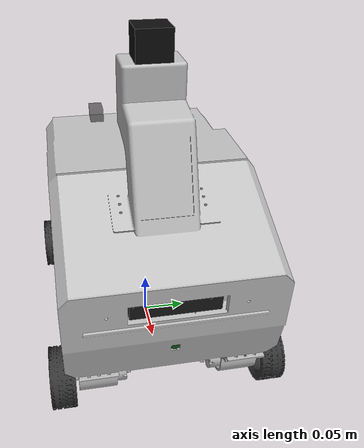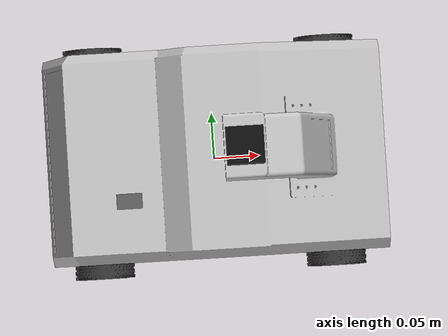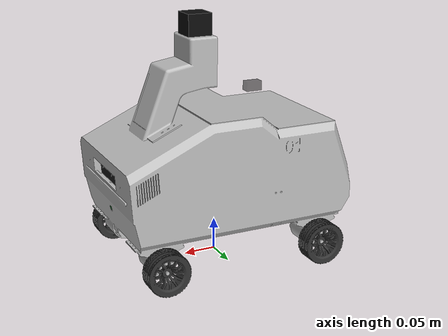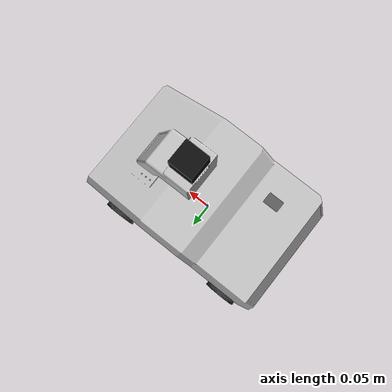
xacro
<?xml version="1.0"?>
<robot xmlns:xacro="http://www.ros.org/wiki/xacro" name="ubot">

    <xacro:property name="M_PI" value="3.1415926535897931" />

    <xacro:arg name="robot_name" default="ubot_robot"/>
    <xacro:arg name="prefix" default=""/>
    <xacro:arg name="use_gazebo" default="false"/>
    <xacro:arg name="sensor_profile" default="full"/>
    <xacro:arg name="camera_pitch" default="0"/>

    <xacro:include filename="$(find ubot_description)/urdf/body/ubot_base.urdf.xacro"/>
    <xacro:include filename="$(find ubot_description)/urdf/sensors/ubot_lidar.urdf.xacro"/>
    <!-- Ultrasonics are not part of the Inspection Robot 01 body; re-enable here and below if fitted. -->
    <xacro:include filename="$(find ubot_description)/urdf/sensors/ubot_camera.urdf.xacro"/>
    <xacro:include filename="$(find ubot_description)/urdf/sensors/ubot_rpi_camera.urdf.xacro"/>
    <xacro:include filename="$(find ubot_description)/urdf/sensors/ubot_imu.urdf.xacro"/>

    <xacro:include filename="$(find ubot_description)/urdf/body/ubot_wheel.urdf.xacro"/>
    <xacro:include filename="$(find ubot_description)/urdf/ros2_control/ubot_ros2_control.xacro"/>
    <xacro:include filename="$(find ubot_description)/urdf/gazebo/ubot_gazebo.urdf.xacro"/>

    <xacro:ubot_ros2_control prefix="$(arg prefix)" use_gazebo="$(arg use_gazebo)" />

    <xacro:if value="$(arg use_gazebo)">
        <xacro:ubot_gazebo prefix="$(arg prefix)" />
    </xacro:if>

    <xacro:ubot_base
    prefix="$(arg prefix)" />

    <xacro:ubot_wheel
    prefix="$(arg prefix)" />

    <xacro:ubot_lidar
    prefix="$(arg prefix)" />

    <xacro:ubot_camera
    prefix="$(arg prefix)"
    pitch="$(arg camera_pitch)" />

    <xacro:ubot_rpi_camera
    prefix="$(arg prefix)" />

    <xacro:ubot_imu
    prefix="$(arg prefix)" />

</robot>

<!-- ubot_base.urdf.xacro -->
<robot xmlns:xacro="http://www.ros.org/wiki/xacro">
<xacro:property name="base_mesh_x" value="-0.16238" />       <!-- Fusion origin -> base_link -->
<xacro:property name="ground_clearance" value="0.066375" />  <!-- base_link height above ground (wheel r 32.5 mm + axle 33.875 mm below chassis) -->

<!-- Mass properties from CAD (PLA printed parts at 100% infill, aluminium motors, LCD).
     Real robot will be heavier (battery, Pi, wiring) and lighter where printed at partial infill. -->
<xacro:property name="base_mass" value="1.757604" />
<xacro:property name="base_com_x" value="0.010371" />
<xacro:property name="base_com_y" value="-0.000052" />
<xacro:property name="base_com_z" value="0.051079" />

<!-- Simplified collision boxes (the full mesh has ~52k triangles, too heavy for physics) -->
<xacro:property name="body_length" value="0.357" />
<xacro:property name="body_width" value="0.220" />
<xacro:property name="body_height" value="0.173" />
<xacro:property name="body_x" value="0.00088" />
<xacro:property name="mast_length" value="0.102" />
<xacro:property name="mast_width" value="0.066" />
<xacro:property name="mast_height" value="0.107" />
<xacro:property name="mast_x" value="0.0610" />
<xacro:property name="mast_z" value="0.2265" />

<!-- Motors and holders hang below the chassis (z -0.048 .. 0), i.e. 18 mm above the ground. -->
<xacro:property name="under_length" value="0.336" />
<xacro:property name="under_width" value="0.232" />
<xacro:property name="under_height" value="0.048" />
<xacro:property name="under_z" value="-0.024" />

<xacro:macro name="ubot_base" params="prefix">
    <link name="${prefix}base_footprint"/>
    <link name="${prefix}base_link">
        <visual>
            <origin xyz="${base_mesh_x} 0 0" rpy="0 0 0"/>
            <geometry>
                <mesh filename="file://$(find ubot_description)/meshes/inspection/base.stl" scale="0.001 0.001 0.001"/>
            </geometry>
            <material name="chassis_gray">
                <color rgba="0.75 0.75 0.75 1"/>
            </material>
        </visual>

        <collision>
            <origin xyz="${body_x} 0 ${body_height/2}" rpy="0 0 0"/>
            <geometry>
                <box size="${body_length} ${body_width} ${body_height}"/>
            </geometry>
        </collision>
        <collision>
            <origin xyz="${mast_x} 0 ${mast_z}" rpy="0 0 0"/>
            <geometry>
                <box size="${mast_length} ${mast_width} ${mast_height}"/>
            </geometry>
        </collision>
        <collision>
            <origin xyz="0 0 ${under_z}" rpy="0 0 0"/>
            <geometry>
                <box size="${under_length} ${under_width} ${under_height}"/>
            </geometry>
        </collision>

        <inertial>
            <origin xyz="${base_com_x} ${base_com_y} ${base_com_z}" rpy="0 0 0"/>
            <mass value="${base_mass}"/>
            <inertia ixx="0.019834" ixy="-0.000003" ixz="-0.001273"
                     iyy="0.034307" iyz="0.000005"
                     izz="0.033227"/>
        </inertial>
    </link>
    <gazebo reference="${prefix}base_link">
        <visual>
            <material>
                <ambient>0.6 0.6 0.6 1</ambient>
                <diffuse>0.75 0.75 0.75 1</diffuse>
                <specular>0.2 0.2 0.2 1</specular>
            </material>
        </visual>
    </gazebo>
    <joint name="${prefix}base_joint" type="fixed">
        <parent link="${prefix}base_footprint"/>
        <child link="${prefix}base_link"/>
        <origin xyz="0 0 ${ground_clearance}" rpy="0 0 0"/>
  </joint>
</xacro:macro>
</robot>

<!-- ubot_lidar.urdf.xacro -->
<robot xmlns:xacro="http://www.ros.org/wiki/xacro">
  <xacro:property name="lidar_length" value="0.0377" />
  <xacro:property name="lidar_width"  value="0.0375" />
  <xacro:property name="lidar_height" value="0.0330" />
  <xacro:property name="lidar_mass"   value="0.0428" />   <!-- approximate, not from datasheet -->

  <!-- Mount: top face of the mast, from CAD (base_link frame) -->
  <xacro:property name="lidar_mount_z" value="0.2798" />
  <xacro:property name="lidar_x" value="0.030584" />
  <xacro:property name="lidar_y" value="0.0" />
  <xacro:property name="lidar_scan_z" value="${lidar_mount_z + lidar_height/2}" />

  <xacro:macro name="ubot_lidar" params="prefix">

    <link name="${prefix}lidar_link">
      <visual>
        <origin xyz="0 0 0" rpy="0 0 0"/>
        <geometry>
          <box size="${lidar_length} ${lidar_width} ${lidar_height}"/>
        </geometry>
        <material name="black">
          <color rgba="0.05 0.05 0.05 1"/>
        </material>
      </visual>

      <collision>
        <origin xyz="0 0 0" rpy="0 0 0"/>
        <geometry>
          <box size="${lidar_length} ${lidar_width} ${lidar_height}"/>
        </geometry>
      </collision>

      <inertial>
        <origin xyz="0 0 0" rpy="0 0 0"/>
        <mass value="${lidar_mass}"/>
        <inertia ixx="${(1/12) * lidar_mass * (lidar_width*lidar_width + lidar_height*lidar_height)}"
                 ixy="0.0" ixz="0.0"
                 iyy="${(1/12) * lidar_mass * (lidar_length*lidar_length + lidar_height*lidar_height)}"
                 iyz="0.0"
                 izz="${(1/12) * lidar_mass * (lidar_length*lidar_length + lidar_width*lidar_width)}"/>
      </inertial>
    </link>

    <joint name="${prefix}lidar_joint" type="fixed">
      <parent link="${prefix}base_link"/>
      <child link="${prefix}lidar_link"/>
      <origin xyz="${lidar_x} ${lidar_y} ${lidar_scan_z}" rpy="0 0 0"/>
    </joint>
  </xacro:macro>
</robot>

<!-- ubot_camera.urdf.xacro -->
<robot xmlns:xacro="http://www.ros.org/wiki/xacro">
  <xacro:property name="camera_mass" value="0.061" />    <!-- OAK-D Lite datasheet -->
  <xacro:property name="camera_width" value="0.091" />
  <xacro:property name="camera_length" value="0.0175" />  <!-- depth, along X -->
  <xacro:property name="camera_height" value="0.028" />

  <xacro:property name="camera_x" value="0.167769" />
  <xacro:property name="camera_y" value="0.0" />
  <xacro:property name="camera_z" value="0.085654" />
  <xacro:property name="camera_cad_tilt" value="0.0714" />   <!-- rad, positive = looking down -->

  <!-- Mesh position in the exported (Fusion world) frame; the visual origin below is the
       inverse of the joint transform, computed symbolically because the tilt is variable. -->
  <xacro:property name="camera_mesh_x" value="0.330149" />
  <xacro:property name="camera_mesh_z" value="0.085654" />

  <xacro:macro name="ubot_camera" params="prefix pitch:=0">

    <!-- net tilt, positive = down -->
    <xacro:property name="tilt" value="${camera_cad_tilt - pitch}" />

    <!--CAMERA_LINK (OAK-D Lite body)-->
    <link name="${prefix}camera_link">
      <visual>
        <!-- inverse of the joint transform, so the world-frame mesh lands in place -->
        <origin xyz="${-camera_mesh_x*cos(tilt) + camera_mesh_z*sin(tilt)} 0 ${-camera_mesh_x*sin(tilt) - camera_mesh_z*cos(tilt)}"
                rpy="0 ${-tilt} 0"/>
        <geometry>
          <mesh filename="file://$(find ubot_description)/meshes/inspection/oakd_lite.stl" scale="0.001 0.001 0.001"/>
        </geometry>
        <material name="camera_black">
          <color rgba="0.1 0.1 0.1 1"/>
        </material>
      </visual>

      <!-- No collision shape: the OAK-D sits inside the chassis collision box, so one here
           would be unreachable. Add one if the camera is ever mounted proud of the body. -->

      <inertial>
        <origin xyz="${-camera_length/2} 0 0" rpy="0 0 0"/>
        <mass value="${camera_mass}"/>
        <inertia ixx="0.000046" ixy="0.0" ixz="0.0"
                 iyy="0.000006" iyz="0.0"
                 izz="0.000044"/>
      </inertial>
    </link>

    <joint name="${prefix}camera_joint" type="fixed">
      <parent link="${prefix}base_link"/>
      <child link="${prefix}camera_link"/>
      <origin xyz="${camera_x} ${camera_y} ${camera_z}" rpy="0 ${tilt} 0"/>
    </joint>

    <!-- CAMERA_DEPTH_FRAME: kept for compatibility. NOT an optical frame
         despite its old comment: it is aligned with camera_link. -->
    <link name="${prefix}camera_depth_frame"/>

    <joint name="${prefix}camera_depth_joint" type="fixed">
      <parent link="${prefix}camera_link"/>
      <child link="${prefix}camera_depth_frame"/>
      <origin xyz="0 0 0" rpy="0 0 0"/>
    </joint>

    <!-- CAMERA_RGB_FRAME: the optical frame. X right, Y down, Z forward. -->
    <link name="${prefix}camera_rgb_frame"/>

    <joint name="${prefix}camera_rgb_joint" type="fixed">
      <parent link="${prefix}camera_link"/>
      <child link="${prefix}camera_rgb_frame"/>
      <origin xyz="0 0 0" rpy="${-pi/2} 0 ${-pi/2}"/>
    </joint>

    <link name="${prefix}camera_optical_frame"/>

    <joint name="${prefix}camera_optical_joint" type="fixed">
      <parent link="${prefix}camera_link"/>
      <child link="${prefix}camera_optical_frame"/>
      <origin xyz="0 0 0" rpy="${-pi/2} 0 ${-pi/2}"/>
    </joint>

  </xacro:macro>
</robot>

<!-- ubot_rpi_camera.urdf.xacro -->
<robot xmlns:xacro="http://www.ros.org/wiki/xacro">
  <!--
    Raspberry Pi Camera v1 in the lower front bumper.

    rpi_camera_link is at the centre of the camera board, X pointing out of the lens,
    tilted 12.54 deg downward as mounted in CAD.
  -->
  <xacro:property name="rpi_camera_mass" value="0.0017" />

  <xacro:property name="rpi_camera_x" value="0.163777" />
  <xacro:property name="rpi_camera_y" value="0.0" />
  <xacro:property name="rpi_camera_z" value="0.032609" />
  <xacro:property name="rpi_camera_pitch" value="0.2188" />   <!-- rad, positive = looking down -->

  <xacro:macro name="ubot_rpi_camera" params="prefix">

    <link name="${prefix}rpi_camera_link">
      <visual>
        <!-- inverse of the joint transform, so the world-frame mesh lands in place -->
        <origin xyz="-0.311305 0 -0.102620" rpy="0 ${-rpi_camera_pitch} 0"/>
        <geometry>
          <mesh filename="file://$(find ubot_description)/meshes/inspection/rpi_camera_v1.stl" scale="0.001 0.001 0.001"/>
        </geometry>
        <material name="pcb_green">
          <color rgba="0.1 0.4 0.15 1"/>
        </material>
      </visual>

      <inertial>
        <origin xyz="0 0 0" rpy="0 0 0"/>
        <mass value="${rpi_camera_mass}"/>
        <!-- 9 x 25 x 24 mm board + lens, box approximation -->
        <inertia ixx="0.000000093" ixy="0.0" ixz="0.0"
                 iyy="0.000000093" iyz="0.0"
                 izz="0.000000170"/>
      </inertial>
    </link>

    <joint name="${prefix}rpi_camera_joint" type="fixed">
      <parent link="${prefix}base_link"/>
      <child link="${prefix}rpi_camera_link"/>
      <origin xyz="${rpi_camera_x} ${rpi_camera_y} ${rpi_camera_z}" rpy="0 ${rpi_camera_pitch} 0"/>
    </joint>

    <!-- Optical frame (REP-103): X right, Y down, Z forward -->
    <link name="${prefix}rpi_camera_optical_frame"/>

    <joint name="${prefix}rpi_camera_optical_joint" type="fixed">
      <parent link="${prefix}rpi_camera_link"/>
      <child link="${prefix}rpi_camera_optical_frame"/>
      <origin xyz="0 0 0" rpy="${-pi/2} 0 ${-pi/2}"/>
    </joint>

  </xacro:macro>
</robot>

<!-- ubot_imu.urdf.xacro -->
<robot xmlns:xacro="http://www.ros.org/wiki/xacro">
  <xacro:property name="M_PI" value="3.1415926535897931" />
  <xacro:property name="imu_mass" value="0.050" />  <!-- 9-DOF IMU module with PCB ~50 g -->
  <xacro:property name="imu_length" value="0.0259" />
  <xacro:property name="imu_width" value="0.0155" />
  <xacro:property name="imu_height" value="0.015" />
  <xacro:property name="imu_com_x" value="-0.000082" />     <!--Center of Mass-->
  <xacro:property name="imu_com_y" value="-0.000041" />
  <xacro:property name="imu_com_z" value="0.010541" />

  <xacro:property name="imu_x" value="-0.09" />
  <xacro:property name="imu_y" value="-0.04645" />
  <xacro:property name="imu_z" value="0.18" />

  <xacro:macro name="ubot_imu" params="prefix">

    <link name="${prefix}imu_link">
      <visual>
        <origin xyz="0 0 0" rpy="0 0 0"/>

        <geometry>
            <box size="${imu_length} ${imu_width} ${imu_height}"/>
        </geometry>

        <material name="black">
          <color rgba="0 0 0 0.5"/>
        </material>
      </visual>

      <inertial>
          <origin xyz="${imu_com_x} ${imu_com_y} ${imu_com_z}" rpy="0 0 0"/>
          <mass value="${imu_mass}"/>
          <inertia ixx="${(1/12) * imu_mass * ((imu_width * imu_width) + (imu_height * imu_height))}"  ixy="0.0"  ixz="0.0"
                    iyy="${(1/12) * imu_mass * ((imu_length * imu_length) + (imu_height * imu_height))}"  iyz="0.0"
                    izz="${(1/12) * imu_mass * ((imu_length * imu_length) + (imu_width * imu_width))}"/>
      </inertial>
    </link>

    <joint name="${prefix}imu_joint" type="fixed">
      <parent link="${prefix}base_link"/>
      <child link="${prefix}imu_link"/>
      <origin xyz="${imu_x} ${imu_y} ${imu_z}" rpy="0 0 0"/>
    </joint>
  </xacro:macro>
</robot>

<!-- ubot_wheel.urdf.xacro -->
<robot xmlns:xacro="http://www.ros.org/wiki/xacro">

  <!-- Geometry from CAD (Inspection Robot 01). Joint origins sit exactly on each motor axle. -->
  <xacro:property name="wheel_radius" value="0.0325" />
  <xacro:property name="wheel_width" value="0.0264" />
  <xacro:property name="wheel_xoff" value="0.1275" />       <!-- half wheelbase (0.255 m axle to axle) -->
  <xacro:property name="wheel_yoff" value="0.1132" />       <!-- half track, wheel centre plane -->
  <xacro:property name="wheel_zoff" value="-0.033875" />    <!-- axle below base_link -->
  <xacro:property name="wheel_separation" value="${2*wheel_yoff}" />  <!-- geometric 0.2264 m -->

  <xacro:property name="wheel_mass" value="0.044215" />
  <xacro:property name="wheel_ixx" value="0.000018" />
  <xacro:property name="wheel_iyy" value="0.000032" />      <!-- about the axle -->
  <xacro:property name="wheel_izz" value="0.000018" />

  <!-- Wheel meshes are in Fusion world coordinates (mm): mesh_x/mesh_y is the wheel
       centre in that frame, so the visual origin is its negative. -->
  <xacro:macro name="ubot_single_wheel" params="prefix name x_sign y_sign mesh mesh_x mesh_y mimics:=''">
    <link name="${prefix}${name}_wheel_link">
      <visual>
        <origin xyz="${-mesh_x} ${-mesh_y} ${-wheel_zoff}" rpy="0 0 0"/>
        <geometry>
          <mesh filename="file://$(find ubot_description)/meshes/inspection/${mesh}.stl" scale="0.001 0.001 0.001"/>
        </geometry>
        <material name="dark_gray">
          <color rgba="0.2 0.2 0.2 1"/>
        </material>
      </visual>

      <collision>
        <origin xyz="0 0 0" rpy="${pi/2} 0 0"/>
        <geometry>
          <cylinder radius="${wheel_radius}" length="${wheel_width}"/>
        </geometry>
      </collision>

      <inertial>
        <origin xyz="0 0 0" rpy="0 0 0"/>
        <mass value="${wheel_mass}"/>
        <inertia ixx="${wheel_ixx}" ixy="0" ixz="0" iyy="${wheel_iyy}" iyz="0" izz="${wheel_izz}"/>
      </inertial>
    </link>

    <joint name="${prefix}${name}_wheel_joint" type="continuous">
      <axis xyz="0 1 0"/>
      <parent link="${prefix}base_link"/>
      <child link="${prefix}${name}_wheel_link"/>
      <origin xyz="${x_sign*wheel_xoff} ${y_sign*wheel_yoff} ${wheel_zoff}" rpy="0 0 0"/>
      <xacro:unless value="${mimics == ''}">
        <mimic joint="${prefix}${mimics}" multiplier="1.0" offset="0.0"/>
      </xacro:unless>
    </joint>
  </xacro:macro>

  <xacro:macro name="ubot_wheel" params="prefix">
    <xacro:ubot_single_wheel prefix="${prefix}" name="front_left"  x_sign="1"  y_sign="1"  mesh="wheel_front_left"  mesh_x="0.28988" mesh_y="0.1132"/>
    <xacro:ubot_single_wheel prefix="${prefix}" name="front_right" x_sign="1"  y_sign="-1" mesh="wheel_front_right" mesh_x="0.28988" mesh_y="-0.1132"/>
    <xacro:ubot_single_wheel prefix="${prefix}" name="rear_left"   x_sign="-1" y_sign="1"  mesh="wheel_rear_left"   mesh_x="0.03488" mesh_y="0.1132"  mimics="front_left_wheel_joint"/>
    <xacro:ubot_single_wheel prefix="${prefix}" name="rear_right"  x_sign="-1" y_sign="-1" mesh="wheel_rear_right"  mesh_x="0.03488" mesh_y="-0.1132" mimics="front_right_wheel_joint"/>
  </xacro:macro>
</robot>
